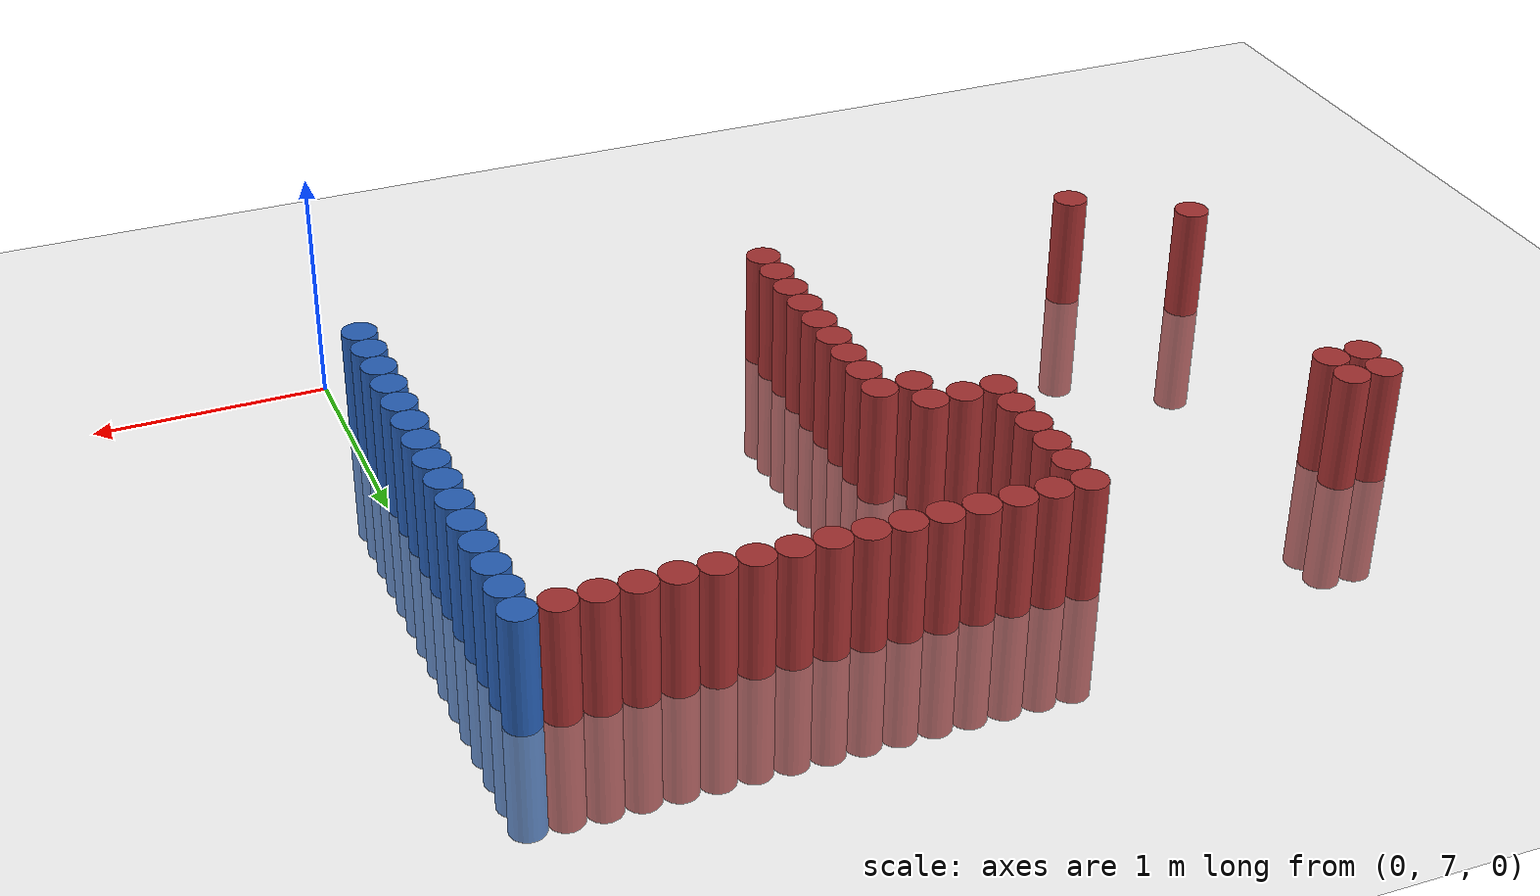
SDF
<sdf version="1.6">
 <world name="default">
  <model name="ground_plane">
   <static>1</static>
   <link name="link">
    <collision name="collision">
     <geometry><plane><normal>0 0 1</normal><size>100 100</size></plane></geometry>
     <surface><friction><ode><mu>100</mu><mu2>50</mu2></ode></friction></surface>
    </collision>
    <visual name="visual">
     <cast_shadows>0</cast_shadows>
     <geometry><plane><normal>0 0 1</normal><size>100 100</size></plane></geometry>
     <material>
      <script><uri>file://media/materials/scripts/gazebo.material</uri><name>Gazebo/Grey</name></script>
     </material>
    </visual>
   </link>
  </model>
  <model name="unit_cylinder_256">
   <static>1</static>
   <pose>-3.825000 7.725000 0.000000 0.000000 0.000000 0.000000</pose>
   <link name="link">
    <inertial>
     <mass>1</mass>
     <inertia><ixx>0.145833</ixx><ixy>0</ixy><ixz>0</ixz><iyy>0.145833</iyy><iyz>0</iyz><izz>0.125</izz></inertia>
    </inertial>
    <collision name="collision">
     <geometry><cylinder><radius>0.075000</radius><length>1</length></cylinder></geometry>
    </collision>
    <visual name="visual">
     <geometry><cylinder><radius>0.075000</radius><length>1</length></cylinder></geometry>
     <material>
      <ambient>0.648000 0.192000 0.192000 1</ambient>
      <diffuse>0.648000 0.192000 0.192000 1</diffuse>
     </material>
     <material>
      <script><name>Gazebo/Grey</name><uri>file://media/materials/scripts/gazebo.material</uri></script>
     </material>
    </visual>
   </link>
  </model>
  <model name="unit_cylinder_257">
   <static>1</static>
   <pose>-3.825000 9.075000 0.000000 0.000000 0.000000 0.000000</pose>
   <link name="link">
    <inertial>
     <mass>1</mass>
     <inertia><ixx>0.145833</ixx><ixy>0</ixy><ixz>0</ixz><iyy>0.145833</iyy><iyz>0</iyz><izz>0.125</izz></inertia>
    </inertial>
    <collision name="collision">
     <geometry><cylinder><radius>0.075000</radius><length>1</length></cylinder></geometry>
    </collision>
    <visual name="visual">
     <geometry><cylinder><radius>0.075000</radius><length>1</length></cylinder></geometry>
     <material>
      <ambient>0.648000 0.192000 0.192000 1</ambient>
      <diffuse>0.648000 0.192000 0.192000 1</diffuse>
     </material>
     <material>
      <script><name>Gazebo/Grey</name><uri>file://media/materials/scripts/gazebo.material</uri></script>
     </material>
    </visual>
   </link>
  </model>
  <model name="unit_cylinder_258">
   <static>1</static>
   <pose>-3.825000 9.225000 0.000000 0.000000 0.000000 0.000000</pose>
   <link name="link">
    <inertial>
     <mass>1</mass>
     <inertia><ixx>0.145833</ixx><ixy>0</ixy><ixz>0</ixz><iyy>0.145833</iyy><iyz>0</iyz><izz>0.125</izz></inertia>
    </inertial>
    <collision name="collision">
     <geometry><cylinder><radius>0.075000</radius><length>1</length></cylinder></geometry>
    </collision>
    <visual name="visual">
     <geometry><cylinder><radius>0.075000</radius><length>1</length></cylinder></geometry>
     <material>
      <ambient>0.648000 0.192000 0.192000 1</ambient>
      <diffuse>0.648000 0.192000 0.192000 1</diffuse>
     </material>
     <material>
      <script><name>Gazebo/Grey</name><uri>file://media/materials/scripts/gazebo.material</uri></script>
     </material>
    </visual>
   </link>
  </model>
  <model name="unit_cylinder_264">
   <static>1</static>
   <pose>-3.675000 9.075000 0.000000 0.000000 0.000000 0.000000</pose>
   <link name="link">
    <inertial>
     <mass>1</mass>
     <inertia><ixx>0.145833</ixx><ixy>0</ixy><ixz>0</ixz><iyy>0.145833</iyy><iyz>0</iyz><izz>0.125</izz></inertia>
    </inertial>
    <collision name="collision">
     <geometry><cylinder><radius>0.075000</radius><length>1</length></cylinder></geometry>
    </collision>
    <visual name="visual">
     <geometry><cylinder><radius>0.075000</radius><length>1</length></cylinder></geometry>
     <material>
      <ambient>0.648000 0.192000 0.192000 1</ambient>
      <diffuse>0.648000 0.192000 0.192000 1</diffuse>
     </material>
     <material>
      <script><name>Gazebo/Grey</name><uri>file://media/materials/scripts/gazebo.material</uri></script>
     </material>
    </visual>
   </link>
  </model>
  <model name="unit_cylinder_265">
   <static>1</static>
   <pose>-3.675000 9.225000 0.000000 0.000000 0.000000 0.000000</pose>
   <link name="link">
    <inertial>
     <mass>1</mass>
     <inertia><ixx>0.145833</ixx><ixy>0</ixy><ixz>0</ixz><iyy>0.145833</iyy><iyz>0</iyz><izz>0.125</izz></inertia>
    </inertial>
    <collision name="collision">
     <geometry><cylinder><radius>0.075000</radius><length>1</length></cylinder></geometry>
    </collision>
    <visual name="visual">
     <geometry><cylinder><radius>0.075000</radius><length>1</length></cylinder></geometry>
     <material>
      <ambient>0.648000 0.192000 0.192000 1</ambient>
      <diffuse>0.648000 0.192000 0.192000 1</diffuse>
     </material>
     <material>
      <script><name>Gazebo/Grey</name><uri>file://media/materials/scripts/gazebo.material</uri></script>
     </material>
    </visual>
   </link>
  </model>
  <model name="unit_cylinder_278">
   <static>1</static>
   <pose>-3.375000 7.425000 0.000000 0.000000 0.000000 0.000000</pose>
   <link name="link">
    <inertial>
     <mass>1</mass>
     <inertia><ixx>0.145833</ixx><ixy>0</ixy><ixz>0</ixz><iyy>0.145833</iyy><iyz>0</iyz><izz>0.125</izz></inertia>
    </inertial>
    <collision name="collision">
     <geometry><cylinder><radius>0.075000</radius><length>1</length></cylinder></geometry>
    </collision>
    <visual name="visual">
     <geometry><cylinder><radius>0.075000</radius><length>1</length></cylinder></geometry>
     <material>
      <ambient>0.648000 0.192000 0.192000 1</ambient>
      <diffuse>0.648000 0.192000 0.192000 1</diffuse>
     </material>
     <material>
      <script><name>Gazebo/Grey</name><uri>file://media/materials/scripts/gazebo.material</uri></script>
     </material>
    </visual>
   </link>
  </model>
  <model name="unit_cylinder_281">
   <static>1</static>
   <pose>-2.325000 8.775000 0.000000 0.000000 0.000000 0.000000</pose>
   <link name="link">
    <inertial>
     <mass>1</mass>
     <inertia><ixx>0.145833</ixx><ixy>0</ixy><ixz>0</ixz><iyy>0.145833</iyy><iyz>0</iyz><izz>0.125</izz></inertia>
    </inertial>
    <collision name="collision">
     <geometry><cylinder><radius>0.075000</radius><length>1</length></cylinder></geometry>
    </collision>
    <visual name="visual">
     <geometry><cylinder><radius>0.075000</radius><length>1</length></cylinder></geometry>
     <material>
      <ambient>0.648000 0.192000 0.192000 1</ambient>
      <diffuse>0.648000 0.192000 0.192000 1</diffuse>
     </material>
     <material>
      <script><name>Gazebo/Grey</name><uri>file://media/materials/scripts/gazebo.material</uri></script>
     </material>
    </visual>
   </link>
  </model>
  <model name="unit_cylinder_282">
   <static>1</static>
   <pose>-2.325000 8.925000 0.000000 0.000000 0.000000 0.000000</pose>
   <link name="link">
    <inertial>
     <mass>1</mass>
     <inertia><ixx>0.145833</ixx><ixy>0</ixy><ixz>0</ixz><iyy>0.145833</iyy><iyz>0</iyz><izz>0.125</izz></inertia>
    </inertial>
    <collision name="collision">
     <geometry><cylinder><radius>0.075000</radius><length>1</length></cylinder></geometry>
    </collision>
    <visual name="visual">
     <geometry><cylinder><radius>0.075000</radius><length>1</length></cylinder></geometry>
     <material>
      <ambient>0.648000 0.192000 0.192000 1</ambient>
      <diffuse>0.648000 0.192000 0.192000 1</diffuse>
     </material>
     <material>
      <script><name>Gazebo/Grey</name><uri>file://media/materials/scripts/gazebo.material</uri></script>
     </material>
    </visual>
   </link>
  </model>
  <model name="unit_cylinder_283">
   <static>1</static>
   <pose>-2.325000 9.075000 0.000000 0.000000 0.000000 0.000000</pose>
   <link name="link">
    <inertial>
     <mass>1</mass>
     <inertia><ixx>0.145833</ixx><ixy>0</ixy><ixz>0</ixz><iyy>0.145833</iyy><iyz>0</iyz><izz>0.125</izz></inertia>
    </inertial>
    <collision name="collision">
     <geometry><cylinder><radius>0.075000</radius><length>1</length></cylinder></geometry>
    </collision>
    <visual name="visual">
     <geometry><cylinder><radius>0.075000</radius><length>1</length></cylinder></geometry>
     <material>
      <ambient>0.648000 0.192000 0.192000 1</ambient>
      <diffuse>0.648000 0.192000 0.192000 1</diffuse>
     </material>
     <material>
      <script><name>Gazebo/Grey</name><uri>file://media/materials/scripts/gazebo.material</uri></script>
     </material>
    </visual>
   </link>
  </model>
  <model name="unit_cylinder_284">
   <static>1</static>
   <pose>-2.325000 9.225000 0.000000 0.000000 0.000000 0.000000</pose>
   <link name="link">
    <inertial>
     <mass>1</mass>
     <inertia><ixx>0.145833</ixx><ixy>0</ixy><ixz>0</ixz><iyy>0.145833</iyy><iyz>0</iyz><izz>0.125</izz></inertia>
    </inertial>
    <collision name="collision">
     <geometry><cylinder><radius>0.075000</radius><length>1</length></cylinder></geometry>
    </collision>
    <visual name="visual">
     <geometry><cylinder><radius>0.075000</radius><length>1</length></cylinder></geometry>
     <material>
      <ambient>0.648000 0.192000 0.192000 1</ambient>
      <diffuse>0.648000 0.192000 0.192000 1</diffuse>
     </material>
     <material>
      <script><name>Gazebo/Grey</name><uri>file://media/materials/scripts/gazebo.material</uri></script>
     </material>
    </visual>
   </link>
  </model>
  <model name="unit_cylinder_285">
   <static>1</static>
   <pose>-2.325000 9.375000 0.000000 0.000000 0.000000 0.000000</pose>
   <link name="link">
    <inertial>
     <mass>1</mass>
     <inertia><ixx>0.145833</ixx><ixy>0</ixy><ixz>0</ixz><iyy>0.145833</iyy><iyz>0</iyz><izz>0.125</izz></inertia>
    </inertial>
    <collision name="collision">
     <geometry><cylinder><radius>0.075000</radius><length>1</length></cylinder></geometry>
    </collision>
    <visual name="visual">
     <geometry><cylinder><radius>0.075000</radius><length>1</length></cylinder></geometry>
     <material>
      <ambient>0.648000 0.192000 0.192000 1</ambient>
      <diffuse>0.648000 0.192000 0.192000 1</diffuse>
     </material>
     <material>
      <script><name>Gazebo/Grey</name><uri>file://media/materials/scripts/gazebo.material</uri></script>
     </material>
    </visual>
   </link>
  </model>
  <model name="unit_cylinder_286">
   <static>1</static>
   <pose>-2.325000 9.525000 0.000000 0.000000 0.000000 0.000000</pose>
   <link name="link">
    <inertial>
     <mass>1</mass>
     <inertia><ixx>0.145833</ixx><ixy>0</ixy><ixz>0</ixz><iyy>0.145833</iyy><iyz>0</iyz><izz>0.125</izz></inertia>
    </inertial>
    <collision name="collision">
     <geometry><cylinder><radius>0.075000</radius><length>1</length></cylinder></geometry>
    </collision>
    <visual name="visual">
     <geometry><cylinder><radius>0.075000</radius><length>1</length></cylinder></geometry>
     <material>
      <ambient>0.648000 0.192000 0.192000 1</ambient>
      <diffuse>0.648000 0.192000 0.192000 1</diffuse>
     </material>
     <material>
      <script><name>Gazebo/Grey</name><uri>file://media/materials/scripts/gazebo.material</uri></script>
     </material>
    </visual>
   </link>
  </model>
  <model name="unit_cylinder_287">
   <static>1</static>
   <pose>-2.175000 8.775000 0.000000 0.000000 0.000000 0.000000</pose>
   <link name="link">
    <inertial>
     <mass>1</mass>
     <inertia><ixx>0.145833</ixx><ixy>0</ixy><ixz>0</ixz><iyy>0.145833</iyy><iyz>0</iyz><izz>0.125</izz></inertia>
    </inertial>
    <collision name="collision">
     <geometry><cylinder><radius>0.075000</radius><length>1</length></cylinder></geometry>
    </collision>
    <visual name="visual">
     <geometry><cylinder><radius>0.075000</radius><length>1</length></cylinder></geometry>
     <material>
      <ambient>0.648000 0.192000 0.192000 1</ambient>
      <diffuse>0.648000 0.192000 0.192000 1</diffuse>
     </material>
     <material>
      <script><name>Gazebo/Grey</name><uri>file://media/materials/scripts/gazebo.material</uri></script>
     </material>
    </visual>
   </link>
  </model>
  <model name="unit_cylinder_288">
   <static>1</static>
   <pose>-2.175000 9.525000 0.000000 0.000000 0.000000 0.000000</pose>
   <link name="link">
    <inertial>
     <mass>1</mass>
     <inertia><ixx>0.145833</ixx><ixy>0</ixy><ixz>0</ixz><iyy>0.145833</iyy><iyz>0</iyz><izz>0.125</izz></inertia>
    </inertial>
    <collision name="collision">
     <geometry><cylinder><radius>0.075000</radius><length>1</length></cylinder></geometry>
    </collision>
    <visual name="visual">
     <geometry><cylinder><radius>0.075000</radius><length>1</length></cylinder></geometry>
     <material>
      <ambient>0.648000 0.192000 0.192000 1</ambient>
      <diffuse>0.648000 0.192000 0.192000 1</diffuse>
     </material>
     <material>
      <script><name>Gazebo/Grey</name><uri>file://media/materials/scripts/gazebo.material</uri></script>
     </material>
    </visual>
   </link>
  </model>
  <model name="unit_cylinder_294">
   <static>1</static>
   <pose>-2.025000 8.625000 0.000000 0.000000 0.000000 0.000000</pose>
   <link name="link">
    <inertial>
     <mass>1</mass>
     <inertia><ixx>0.145833</ixx><ixy>0</ixy><ixz>0</ixz><iyy>0.145833</iyy><iyz>0</iyz><izz>0.125</izz></inertia>
    </inertial>
    <collision name="collision">
     <geometry><cylinder><radius>0.075000</radius><length>1</length></cylinder></geometry>
    </collision>
    <visual name="visual">
     <geometry><cylinder><radius>0.075000</radius><length>1</length></cylinder></geometry>
     <material>
      <ambient>0.648000 0.192000 0.192000 1</ambient>
      <diffuse>0.648000 0.192000 0.192000 1</diffuse>
     </material>
     <material>
      <script><name>Gazebo/Grey</name><uri>file://media/materials/scripts/gazebo.material</uri></script>
     </material>
    </visual>
   </link>
  </model>
  <model name="unit_cylinder_295">
   <static>1</static>
   <pose>-2.025000 8.775000 0.000000 0.000000 0.000000 0.000000</pose>
   <link name="link">
    <inertial>
     <mass>1</mass>
     <inertia><ixx>0.145833</ixx><ixy>0</ixy><ixz>0</ixz><iyy>0.145833</iyy><iyz>0</iyz><izz>0.125</izz></inertia>
    </inertial>
    <collision name="collision">
     <geometry><cylinder><radius>0.075000</radius><length>1</length></cylinder></geometry>
    </collision>
    <visual name="visual">
     <geometry><cylinder><radius>0.075000</radius><length>1</length></cylinder></geometry>
     <material>
      <ambient>0.648000 0.192000 0.192000 1</ambient>
      <diffuse>0.648000 0.192000 0.192000 1</diffuse>
     </material>
     <material>
      <script><name>Gazebo/Grey</name><uri>file://media/materials/scripts/gazebo.material</uri></script>
     </material>
    </visual>
   </link>
  </model>
  <model name="unit_cylinder_296">
   <static>1</static>
   <pose>-2.025000 9.525000 0.000000 0.000000 0.000000 0.000000</pose>
   <link name="link">
    <inertial>
     <mass>1</mass>
     <inertia><ixx>0.145833</ixx><ixy>0</ixy><ixz>0</ixz><iyy>0.145833</iyy><iyz>0</iyz><izz>0.125</izz></inertia>
    </inertial>
    <collision name="collision">
     <geometry><cylinder><radius>0.075000</radius><length>1</length></cylinder></geometry>
    </collision>
    <visual name="visual">
     <geometry><cylinder><radius>0.075000</radius><length>1</length></cylinder></geometry>
     <material>
      <ambient>0.648000 0.192000 0.192000 1</ambient>
      <diffuse>0.648000 0.192000 0.192000 1</diffuse>
     </material>
     <material>
      <script><name>Gazebo/Grey</name><uri>file://media/materials/scripts/gazebo.material</uri></script>
     </material>
    </visual>
   </link>
  </model>
  <model name="unit_cylinder_309">
   <static>1</static>
   <pose>-1.875000 7.425000 0.000000 0.000000 0.000000 0.000000</pose>
   <link name="link">
    <inertial>
     <mass>1</mass>
     <inertia><ixx>0.145833</ixx><ixy>0</ixy><ixz>0</ixz><iyy>0.145833</iyy><iyz>0</iyz><izz>0.125</izz></inertia>
    </inertial>
    <collision name="collision">
     <geometry><cylinder><radius>0.075000</radius><length>1</length></cylinder></geometry>
    </collision>
    <visual name="visual">
     <geometry><cylinder><radius>0.075000</radius><length>1</length></cylinder></geometry>
     <material>
      <ambient>0.648000 0.192000 0.192000 1</ambient>
      <diffuse>0.648000 0.192000 0.192000 1</diffuse>
     </material>
     <material>
      <script><name>Gazebo/Grey</name><uri>file://media/materials/scripts/gazebo.material</uri></script>
     </material>
    </visual>
   </link>
  </model>
  <model name="unit_cylinder_310">
   <static>1</static>
   <pose>-1.875000 7.575000 0.000000 0.000000 0.000000 0.000000</pose>
   <link name="link">
    <inertial>
     <mass>1</mass>
     <inertia><ixx>0.145833</ixx><ixy>0</ixy><ixz>0</ixz><iyy>0.145833</iyy><iyz>0</iyz><izz>0.125</izz></inertia>
    </inertial>
    <collision name="collision">
     <geometry><cylinder><radius>0.075000</radius><length>1</length></cylinder></geometry>
    </collision>
    <visual name="visual">
     <geometry><cylinder><radius>0.075000</radius><length>1</length></cylinder></geometry>
     <material>
      <ambient>0.648000 0.192000 0.192000 1</ambient>
      <diffuse>0.648000 0.192000 0.192000 1</diffuse>
     </material>
     <material>
      <script><name>Gazebo/Grey</name><uri>file://media/materials/scripts/gazebo.material</uri></script>
     </material>
    </visual>
   </link>
  </model>
  <model name="unit_cylinder_311">
   <static>1</static>
   <pose>-1.875000 7.725000 0.000000 0.000000 0.000000 0.000000</pose>
   <link name="link">
    <inertial>
     <mass>1</mass>
     <inertia><ixx>0.145833</ixx><ixy>0</ixy><ixz>0</ixz><iyy>0.145833</iyy><iyz>0</iyz><izz>0.125</izz></inertia>
    </inertial>
    <collision name="collision">
     <geometry><cylinder><radius>0.075000</radius><length>1</length></cylinder></geometry>
    </collision>
    <visual name="visual">
     <geometry><cylinder><radius>0.075000</radius><length>1</length></cylinder></geometry>
     <material>
      <ambient>0.648000 0.192000 0.192000 1</ambient>
      <diffuse>0.648000 0.192000 0.192000 1</diffuse>
     </material>
     <material>
      <script><name>Gazebo/Grey</name><uri>file://media/materials/scripts/gazebo.material</uri></script>
     </material>
    </visual>
   </link>
  </model>
  <model name="unit_cylinder_312">
   <static>1</static>
   <pose>-1.875000 7.875000 0.000000 0.000000 0.000000 0.000000</pose>
   <link name="link">
    <inertial>
     <mass>1</mass>
     <inertia><ixx>0.145833</ixx><ixy>0</ixy><ixz>0</ixz><iyy>0.145833</iyy><iyz>0</iyz><izz>0.125</izz></inertia>
    </inertial>
    <collision name="collision">
     <geometry><cylinder><radius>0.075000</radius><length>1</length></cylinder></geometry>
    </collision>
    <visual name="visual">
     <geometry><cylinder><radius>0.075000</radius><length>1</length></cylinder></geometry>
     <material>
      <ambient>0.648000 0.192000 0.192000 1</ambient>
      <diffuse>0.648000 0.192000 0.192000 1</diffuse>
     </material>
     <material>
      <script><name>Gazebo/Grey</name><uri>file://media/materials/scripts/gazebo.material</uri></script>
     </material>
    </visual>
   </link>
  </model>
  <model name="unit_cylinder_313">
   <static>1</static>
   <pose>-1.875000 8.025000 0.000000 0.000000 0.000000 0.000000</pose>
   <link name="link">
    <inertial>
     <mass>1</mass>
     <inertia><ixx>0.145833</ixx><ixy>0</ixy><ixz>0</ixz><iyy>0.145833</iyy><iyz>0</iyz><izz>0.125</izz></inertia>
    </inertial>
    <collision name="collision">
     <geometry><cylinder><radius>0.075000</radius><length>1</length></cylinder></geometry>
    </collision>
    <visual name="visual">
     <geometry><cylinder><radius>0.075000</radius><length>1</length></cylinder></geometry>
     <material>
      <ambient>0.648000 0.192000 0.192000 1</ambient>
      <diffuse>0.648000 0.192000 0.192000 1</diffuse>
     </material>
     <material>
      <script><name>Gazebo/Grey</name><uri>file://media/materials/scripts/gazebo.material</uri></script>
     </material>
    </visual>
   </link>
  </model>
  <model name="unit_cylinder_314">
   <static>1</static>
   <pose>-1.875000 8.175000 0.000000 0.000000 0.000000 0.000000</pose>
   <link name="link">
    <inertial>
     <mass>1</mass>
     <inertia><ixx>0.145833</ixx><ixy>0</ixy><ixz>0</ixz><iyy>0.145833</iyy><iyz>0</iyz><izz>0.125</izz></inertia>
    </inertial>
    <collision name="collision">
     <geometry><cylinder><radius>0.075000</radius><length>1</length></cylinder></geometry>
    </collision>
    <visual name="visual">
     <geometry><cylinder><radius>0.075000</radius><length>1</length></cylinder></geometry>
     <material>
      <ambient>0.648000 0.192000 0.192000 1</ambient>
      <diffuse>0.648000 0.192000 0.192000 1</diffuse>
     </material>
     <material>
      <script><name>Gazebo/Grey</name><uri>file://media/materials/scripts/gazebo.material</uri></script>
     </material>
    </visual>
   </link>
  </model>
  <model name="unit_cylinder_315">
   <static>1</static>
   <pose>-1.875000 8.325000 0.000000 0.000000 0.000000 0.000000</pose>
   <link name="link">
    <inertial>
     <mass>1</mass>
     <inertia><ixx>0.145833</ixx><ixy>0</ixy><ixz>0</ixz><iyy>0.145833</iyy><iyz>0</iyz><izz>0.125</izz></inertia>
    </inertial>
    <collision name="collision">
     <geometry><cylinder><radius>0.075000</radius><length>1</length></cylinder></geometry>
    </collision>
    <visual name="visual">
     <geometry><cylinder><radius>0.075000</radius><length>1</length></cylinder></geometry>
     <material>
      <ambient>0.648000 0.192000 0.192000 1</ambient>
      <diffuse>0.648000 0.192000 0.192000 1</diffuse>
     </material>
     <material>
      <script><name>Gazebo/Grey</name><uri>file://media/materials/scripts/gazebo.material</uri></script>
     </material>
    </visual>
   </link>
  </model>
  <model name="unit_cylinder_316">
   <static>1</static>
   <pose>-1.875000 8.475000 0.000000 0.000000 0.000000 0.000000</pose>
   <link name="link">
    <inertial>
     <mass>1</mass>
     <inertia><ixx>0.145833</ixx><ixy>0</ixy><ixz>0</ixz><iyy>0.145833</iyy><iyz>0</iyz><izz>0.125</izz></inertia>
    </inertial>
    <collision name="collision">
     <geometry><cylinder><radius>0.075000</radius><length>1</length></cylinder></geometry>
    </collision>
    <visual name="visual">
     <geometry><cylinder><radius>0.075000</radius><length>1</length></cylinder></geometry>
     <material>
      <ambient>0.648000 0.192000 0.192000 1</ambient>
      <diffuse>0.648000 0.192000 0.192000 1</diffuse>
     </material>
     <material>
      <script><name>Gazebo/Grey</name><uri>file://media/materials/scripts/gazebo.material</uri></script>
     </material>
    </visual>
   </link>
  </model>
  <model name="unit_cylinder_317">
   <static>1</static>
   <pose>-1.875000 8.625000 0.000000 0.000000 0.000000 0.000000</pose>
   <link name="link">
    <inertial>
     <mass>1</mass>
     <inertia><ixx>0.145833</ixx><ixy>0</ixy><ixz>0</ixz><iyy>0.145833</iyy><iyz>0</iyz><izz>0.125</izz></inertia>
    </inertial>
    <collision name="collision">
     <geometry><cylinder><radius>0.075000</radius><length>1</length></cylinder></geometry>
    </collision>
    <visual name="visual">
     <geometry><cylinder><radius>0.075000</radius><length>1</length></cylinder></geometry>
     <material>
      <ambient>0.648000 0.192000 0.192000 1</ambient>
      <diffuse>0.648000 0.192000 0.192000 1</diffuse>
     </material>
     <material>
      <script><name>Gazebo/Grey</name><uri>file://media/materials/scripts/gazebo.material</uri></script>
     </material>
    </visual>
   </link>
  </model>
  <model name="unit_cylinder_318">
   <static>1</static>
   <pose>-1.875000 9.525000 0.000000 0.000000 0.000000 0.000000</pose>
   <link name="link">
    <inertial>
     <mass>1</mass>
     <inertia><ixx>0.145833</ixx><ixy>0</ixy><ixz>0</ixz><iyy>0.145833</iyy><iyz>0</iyz><izz>0.125</izz></inertia>
    </inertial>
    <collision name="collision">
     <geometry><cylinder><radius>0.075000</radius><length>1</length></cylinder></geometry>
    </collision>
    <visual name="visual">
     <geometry><cylinder><radius>0.075000</radius><length>1</length></cylinder></geometry>
     <material>
      <ambient>0.648000 0.192000 0.192000 1</ambient>
      <diffuse>0.648000 0.192000 0.192000 1</diffuse>
     </material>
     <material>
      <script><name>Gazebo/Grey</name><uri>file://media/materials/scripts/gazebo.material</uri></script>
     </material>
    </visual>
   </link>
  </model>
  <model name="unit_cylinder_320">
   <static>1</static>
   <pose>-1.725000 9.525000 0.000000 0.000000 0.000000 0.000000</pose>
   <link name="link">
    <inertial>
     <mass>1</mass>
     <inertia><ixx>0.145833</ixx><ixy>0</ixy><ixz>0</ixz><iyy>0.145833</iyy><iyz>0</iyz><izz>0.125</izz></inertia>
    </inertial>
    <collision name="collision">
     <geometry><cylinder><radius>0.075000</radius><length>1</length></cylinder></geometry>
    </collision>
    <visual name="visual">
     <geometry><cylinder><radius>0.075000</radius><length>1</length></cylinder></geometry>
     <material>
      <ambient>0.648000 0.192000 0.192000 1</ambient>
      <diffuse>0.648000 0.192000 0.192000 1</diffuse>
     </material>
     <material>
      <script><name>Gazebo/Grey</name><uri>file://media/materials/scripts/gazebo.material</uri></script>
     </material>
    </visual>
   </link>
  </model>
  <model name="unit_cylinder_322">
   <static>1</static>
   <pose>-1.575000 9.525000 0.000000 0.000000 0.000000 0.000000</pose>
   <link name="link">
    <inertial>
     <mass>1</mass>
     <inertia><ixx>0.145833</ixx><ixy>0</ixy><ixz>0</ixz><iyy>0.145833</iyy><iyz>0</iyz><izz>0.125</izz></inertia>
    </inertial>
    <collision name="collision">
     <geometry><cylinder><radius>0.075000</radius><length>1</length></cylinder></geometry>
    </collision>
    <visual name="visual">
     <geometry><cylinder><radius>0.075000</radius><length>1</length></cylinder></geometry>
     <material>
      <ambient>0.648000 0.192000 0.192000 1</ambient>
      <diffuse>0.648000 0.192000 0.192000 1</diffuse>
     </material>
     <material>
      <script><name>Gazebo/Grey</name><uri>file://media/materials/scripts/gazebo.material</uri></script>
     </material>
    </visual>
   </link>
  </model>
  <model name="unit_cylinder_324">
   <static>1</static>
   <pose>-1.425000 9.525000 0.000000 0.000000 0.000000 0.000000</pose>
   <link name="link">
    <inertial>
     <mass>1</mass>
     <inertia><ixx>0.145833</ixx><ixy>0</ixy><ixz>0</ixz><iyy>0.145833</iyy><iyz>0</iyz><izz>0.125</izz></inertia>
    </inertial>
    <collision name="collision">
     <geometry><cylinder><radius>0.075000</radius><length>1</length></cylinder></geometry>
    </collision>
    <visual name="visual">
     <geometry><cylinder><radius>0.075000</radius><length>1</length></cylinder></geometry>
     <material>
      <ambient>0.648000 0.192000 0.192000 1</ambient>
      <diffuse>0.648000 0.192000 0.192000 1</diffuse>
     </material>
     <material>
      <script><name>Gazebo/Grey</name><uri>file://media/materials/scripts/gazebo.material</uri></script>
     </material>
    </visual>
   </link>
  </model>
  <model name="unit_cylinder_326">
   <static>1</static>
   <pose>-1.275000 9.525000 0.000000 0.000000 0.000000 0.000000</pose>
   <link name="link">
    <inertial>
     <mass>1</mass>
     <inertia><ixx>0.145833</ixx><ixy>0</ixy><ixz>0</ixz><iyy>0.145833</iyy><iyz>0</iyz><izz>0.125</izz></inertia>
    </inertial>
    <collision name="collision">
     <geometry><cylinder><radius>0.075000</radius><length>1</length></cylinder></geometry>
    </collision>
    <visual name="visual">
     <geometry><cylinder><radius>0.075000</radius><length>1</length></cylinder></geometry>
     <material>
      <ambient>0.648000 0.192000 0.192000 1</ambient>
      <diffuse>0.648000 0.192000 0.192000 1</diffuse>
     </material>
     <material>
      <script><name>Gazebo/Grey</name><uri>file://media/materials/scripts/gazebo.material</uri></script>
     </material>
    </visual>
   </link>
  </model>
  <model name="unit_cylinder_328">
   <static>1</static>
   <pose>-1.125000 9.525000 0.000000 0.000000 0.000000 0.000000</pose>
   <link name="link">
    <inertial>
     <mass>1</mass>
     <inertia><ixx>0.145833</ixx><ixy>0</ixy><ixz>0</ixz><iyy>0.145833</iyy><iyz>0</iyz><izz>0.125</izz></inertia>
    </inertial>
    <collision name="collision">
     <geometry><cylinder><radius>0.075000</radius><length>1</length></cylinder></geometry>
    </collision>
    <visual name="visual">
     <geometry><cylinder><radius>0.075000</radius><length>1</length></cylinder></geometry>
     <material>
      <ambient>0.648000 0.192000 0.192000 1</ambient>
      <diffuse>0.648000 0.192000 0.192000 1</diffuse>
     </material>
     <material>
      <script><name>Gazebo/Grey</name><uri>file://media/materials/scripts/gazebo.material</uri></script>
     </material>
    </visual>
   </link>
  </model>
  <model name="unit_cylinder_330">
   <static>1</static>
   <pose>-0.975000 9.525000 0.000000 0.000000 0.000000 0.000000</pose>
   <link name="link">
    <inertial>
     <mass>1</mass>
     <inertia><ixx>0.145833</ixx><ixy>0</ixy><ixz>0</ixz><iyy>0.145833</iyy><iyz>0</iyz><izz>0.125</izz></inertia>
    </inertial>
    <collision name="collision">
     <geometry><cylinder><radius>0.075000</radius><length>1</length></cylinder></geometry>
    </collision>
    <visual name="visual">
     <geometry><cylinder><radius>0.075000</radius><length>1</length></cylinder></geometry>
     <material>
      <ambient>0.648000 0.192000 0.192000 1</ambient>
      <diffuse>0.648000 0.192000 0.192000 1</diffuse>
     </material>
     <material>
      <script><name>Gazebo/Grey</name><uri>file://media/materials/scripts/gazebo.material</uri></script>
     </material>
    </visual>
   </link>
  </model>
  <model name="unit_cylinder_332">
   <static>1</static>
   <pose>-0.825000 9.525000 0.000000 0.000000 0.000000 0.000000</pose>
   <link name="link">
    <inertial>
     <mass>1</mass>
     <inertia><ixx>0.145833</ixx><ixy>0</ixy><ixz>0</ixz><iyy>0.145833</iyy><iyz>0</iyz><izz>0.125</izz></inertia>
    </inertial>
    <collision name="collision">
     <geometry><cylinder><radius>0.075000</radius><length>1</length></cylinder></geometry>
    </collision>
    <visual name="visual">
     <geometry><cylinder><radius>0.075000</radius><length>1</length></cylinder></geometry>
     <material>
      <ambient>0.648000 0.192000 0.192000 1</ambient>
      <diffuse>0.648000 0.192000 0.192000 1</diffuse>
     </material>
     <material>
      <script><name>Gazebo/Grey</name><uri>file://media/materials/scripts/gazebo.material</uri></script>
     </material>
    </visual>
   </link>
  </model>
  <model name="unit_cylinder_334">
   <static>1</static>
   <pose>-0.675000 9.525000 0.000000 0.000000 0.000000 0.000000</pose>
   <link name="link">
    <inertial>
     <mass>1</mass>
     <inertia><ixx>0.145833</ixx><ixy>0</ixy><ixz>0</ixz><iyy>0.145833</iyy><iyz>0</iyz><izz>0.125</izz></inertia>
    </inertial>
    <collision name="collision">
     <geometry><cylinder><radius>0.075000</radius><length>1</length></cylinder></geometry>
    </collision>
    <visual name="visual">
     <geometry><cylinder><radius>0.075000</radius><length>1</length></cylinder></geometry>
     <material>
      <ambient>0.648000 0.192000 0.192000 1</ambient>
      <diffuse>0.648000 0.192000 0.192000 1</diffuse>
     </material>
     <material>
      <script><name>Gazebo/Grey</name><uri>file://media/materials/scripts/gazebo.material</uri></script>
     </material>
    </visual>
   </link>
  </model>
  <model name="unit_cylinder_336">
   <static>1</static>
   <pose>-0.525000 9.525000 0.000000 0.000000 0.000000 0.000000</pose>
   <link name="link">
    <inertial>
     <mass>1</mass>
     <inertia><ixx>0.145833</ixx><ixy>0</ixy><ixz>0</ixz><iyy>0.145833</iyy><iyz>0</iyz><izz>0.125</izz></inertia>
    </inertial>
    <collision name="collision">
     <geometry><cylinder><radius>0.075000</radius><length>1</length></cylinder></geometry>
    </collision>
    <visual name="visual">
     <geometry><cylinder><radius>0.075000</radius><length>1</length></cylinder></geometry>
     <material>
      <ambient>0.648000 0.192000 0.192000 1</ambient>
      <diffuse>0.648000 0.192000 0.192000 1</diffuse>
     </material>
     <material>
      <script><name>Gazebo/Grey</name><uri>file://media/materials/scripts/gazebo.material</uri></script>
     </material>
    </visual>
   </link>
  </model>
  <model name="unit_cylinder_338">
   <static>1</static>
   <pose>-0.375000 9.525000 0.000000 0.000000 0.000000 0.000000</pose>
   <link name="link">
    <inertial>
     <mass>1</mass>
     <inertia><ixx>0.145833</ixx><ixy>0</ixy><ixz>0</ixz><iyy>0.145833</iyy><iyz>0</iyz><izz>0.125</izz></inertia>
    </inertial>
    <collision name="collision">
     <geometry><cylinder><radius>0.075000</radius><length>1</length></cylinder></geometry>
    </collision>
    <visual name="visual">
     <geometry><cylinder><radius>0.075000</radius><length>1</length></cylinder></geometry>
     <material>
      <ambient>0.648000 0.192000 0.192000 1</ambient>
      <diffuse>0.648000 0.192000 0.192000 1</diffuse>
     </material>
     <material>
      <script><name>Gazebo/Grey</name><uri>file://media/materials/scripts/gazebo.material</uri></script>
     </material>
    </visual>
   </link>
  </model>
  <model name="unit_cylinder_340">
   <static>1</static>
   <pose>-0.225000 9.525000 0.000000 0.000000 0.000000 0.000000</pose>
   <link name="link">
    <inertial>
     <mass>1</mass>
     <inertia><ixx>0.145833</ixx><ixy>0</ixy><ixz>0</ixz><iyy>0.145833</iyy><iyz>0</iyz><izz>0.125</izz></inertia>
    </inertial>
    <collision name="collision">
     <geometry><cylinder><radius>0.075000</radius><length>1</length></cylinder></geometry>
    </collision>
    <visual name="visual">
     <geometry><cylinder><radius>0.075000</radius><length>1</length></cylinder></geometry>
     <material>
      <ambient>0.648000 0.192000 0.192000 1</ambient>
      <diffuse>0.648000 0.192000 0.192000 1</diffuse>
     </material>
     <material>
      <script><name>Gazebo/Grey</name><uri>file://media/materials/scripts/gazebo.material</uri></script>
     </material>
    </visual>
   </link>
  </model>
  <model name="unit_cylinder_356">
   <static>1</static>
   <pose>-0.075000 7.425000 0.000000 0.000000 0.000000 0.000000</pose>
   <link name="link">
    <inertial>
     <mass>1</mass>
     <inertia><ixx>0.145833</ixx><ixy>0</ixy><ixz>0</ixz><iyy>0.145833</iyy><iyz>0</iyz><izz>0.125</izz></inertia>
    </inertial>
    <collision name="collision">
     <geometry><cylinder><radius>0.075000</radius><length>1</length></cylinder></geometry>
    </collision>
    <visual name="visual">
     <geometry><cylinder><radius>0.075000</radius><length>1</length></cylinder></geometry>
     <material>
      <ambient>0.152000 0.379000 0.720000 1</ambient>
      <diffuse>0.152000 0.379000 0.720000 1</diffuse>
     </material>
     <material>
      <script><name>Gazebo/Grey</name><uri>file://media/materials/scripts/gazebo.material</uri></script>
     </material>
    </visual>
   </link>
  </model>
  <model name="unit_cylinder_357">
   <static>1</static>
   <pose>-0.075000 7.575000 0.000000 0.000000 0.000000 0.000000</pose>
   <link name="link">
    <inertial>
     <mass>1</mass>
     <inertia><ixx>0.145833</ixx><ixy>0</ixy><ixz>0</ixz><iyy>0.145833</iyy><iyz>0</iyz><izz>0.125</izz></inertia>
    </inertial>
    <collision name="collision">
     <geometry><cylinder><radius>0.075000</radius><length>1</length></cylinder></geometry>
    </collision>
    <visual name="visual">
     <geometry><cylinder><radius>0.075000</radius><length>1</length></cylinder></geometry>
     <material>
      <ambient>0.152000 0.379000 0.720000 1</ambient>
      <diffuse>0.152000 0.379000 0.720000 1</diffuse>
     </material>
     <material>
      <script><name>Gazebo/Grey</name><uri>file://media/materials/scripts/gazebo.material</uri></script>
     </material>
    </visual>
   </link>
  </model>
  <model name="unit_cylinder_358">
   <static>1</static>
   <pose>-0.075000 7.725000 0.000000 0.000000 0.000000 0.000000</pose>
   <link name="link">
    <inertial>
     <mass>1</mass>
     <inertia><ixx>0.145833</ixx><ixy>0</ixy><ixz>0</ixz><iyy>0.145833</iyy><iyz>0</iyz><izz>0.125</izz></inertia>
    </inertial>
    <collision name="collision">
     <geometry><cylinder><radius>0.075000</radius><length>1</length></cylinder></geometry>
    </collision>
    <visual name="visual">
     <geometry><cylinder><radius>0.075000</radius><length>1</length></cylinder></geometry>
     <material>
      <ambient>0.152000 0.379000 0.720000 1</ambient>
      <diffuse>0.152000 0.379000 0.720000 1</diffuse>
     </material>
     <material>
      <script><name>Gazebo/Grey</name><uri>file://media/materials/scripts/gazebo.material</uri></script>
     </material>
    </visual>
   </link>
  </model>
  <model name="unit_cylinder_359">
   <static>1</static>
   <pose>-0.075000 7.875000 0.000000 0.000000 0.000000 0.000000</pose>
   <link name="link">
    <inertial>
     <mass>1</mass>
     <inertia><ixx>0.145833</ixx><ixy>0</ixy><ixz>0</ixz><iyy>0.145833</iyy><iyz>0</iyz><izz>0.125</izz></inertia>
    </inertial>
    <collision name="collision">
     <geometry><cylinder><radius>0.075000</radius><length>1</length></cylinder></geometry>
    </collision>
    <visual name="visual">
     <geometry><cylinder><radius>0.075000</radius><length>1</length></cylinder></geometry>
     <material>
      <ambient>0.152000 0.379000 0.720000 1</ambient>
      <diffuse>0.152000 0.379000 0.720000 1</diffuse>
     </material>
     <material>
      <script><name>Gazebo/Grey</name><uri>file://media/materials/scripts/gazebo.material</uri></script>
     </material>
    </visual>
   </link>
  </model>
  <model name="unit_cylinder_360">
   <static>1</static>
   <pose>-0.075000 8.025000 0.000000 0.000000 0.000000 0.000000</pose>
   <link name="link">
    <inertial>
     <mass>1</mass>
     <inertia><ixx>0.145833</ixx><ixy>0</ixy><ixz>0</ixz><iyy>0.145833</iyy><iyz>0</iyz><izz>0.125</izz></inertia>
    </inertial>
    <collision name="collision">
     <geometry><cylinder><radius>0.075000</radius><length>1</length></cylinder></geometry>
    </collision>
    <visual name="visual">
     <geometry><cylinder><radius>0.075000</radius><length>1</length></cylinder></geometry>
     <material>
      <ambient>0.152000 0.379000 0.720000 1</ambient>
      <diffuse>0.152000 0.379000 0.720000 1</diffuse>
     </material>
     <material>
      <script><name>Gazebo/Grey</name><uri>file://media/materials/scripts/gazebo.material</uri></script>
     </material>
    </visual>
   </link>
  </model>
  <model name="unit_cylinder_361">
   <static>1</static>
   <pose>-0.075000 8.175000 0.000000 0.000000 0.000000 0.000000</pose>
   <link name="link">
    <inertial>
     <mass>1</mass>
     <inertia><ixx>0.145833</ixx><ixy>0</ixy><ixz>0</ixz><iyy>0.145833</iyy><iyz>0</iyz><izz>0.125</izz></inertia>
    </inertial>
    <collision name="collision">
     <geometry><cylinder><radius>0.075000</radius><length>1</length></cylinder></geometry>
    </collision>
    <visual name="visual">
     <geometry><cylinder><radius>0.075000</radius><length>1</length></cylinder></geometry>
     <material>
      <ambient>0.152000 0.379000 0.720000 1</ambient>
      <diffuse>0.152000 0.379000 0.720000 1</diffuse>
     </material>
     <material>
      <script><name>Gazebo/Grey</name><uri>file://media/materials/scripts/gazebo.material</uri></script>
     </material>
    </visual>
   </link>
  </model>
  <model name="unit_cylinder_362">
   <static>1</static>
   <pose>-0.075000 8.325000 0.000000 0.000000 0.000000 0.000000</pose>
   <link name="link">
    <inertial>
     <mass>1</mass>
     <inertia><ixx>0.145833</ixx><ixy>0</ixy><ixz>0</ixz><iyy>0.145833</iyy><iyz>0</iyz><izz>0.125</izz></inertia>
    </inertial>
    <collision name="collision">
     <geometry><cylinder><radius>0.075000</radius><length>1</length></cylinder></geometry>
    </collision>
    <visual name="visual">
     <geometry><cylinder><radius>0.075000</radius><length>1</length></cylinder></geometry>
     <material>
      <ambient>0.152000 0.379000 0.720000 1</ambient>
      <diffuse>0.152000 0.379000 0.720000 1</diffuse>
     </material>
     <material>
      <script><name>Gazebo/Grey</name><uri>file://media/materials/scripts/gazebo.material</uri></script>
     </material>
    </visual>
   </link>
  </model>
  <model name="unit_cylinder_363">
   <static>1</static>
   <pose>-0.075000 8.475000 0.000000 0.000000 0.000000 0.000000</pose>
   <link name="link">
    <inertial>
     <mass>1</mass>
     <inertia><ixx>0.145833</ixx><ixy>0</ixy><ixz>0</ixz><iyy>0.145833</iyy><iyz>0</iyz><izz>0.125</izz></inertia>
    </inertial>
    <collision name="collision">
     <geometry><cylinder><radius>0.075000</radius><length>1</length></cylinder></geometry>
    </collision>
    <visual name="visual">
     <geometry><cylinder><radius>0.075000</radius><length>1</length></cylinder></geometry>
     <material>
      <ambient>0.152000 0.379000 0.720000 1</ambient>
      <diffuse>0.152000 0.379000 0.720000 1</diffuse>
     </material>
     <material>
      <script><name>Gazebo/Grey</name><uri>file://media/materials/scripts/gazebo.material</uri></script>
     </material>
    </visual>
   </link>
  </model>
  <model name="unit_cylinder_364">
   <static>1</static>
   <pose>-0.075000 8.625000 0.000000 0.000000 0.000000 0.000000</pose>
   <link name="link">
    <inertial>
     <mass>1</mass>
     <inertia><ixx>0.145833</ixx><ixy>0</ixy><ixz>0</ixz><iyy>0.145833</iyy><iyz>0</iyz><izz>0.125</izz></inertia>
    </inertial>
    <collision name="collision">
     <geometry><cylinder><radius>0.075000</radius><length>1</length></cylinder></geometry>
    </collision>
    <visual name="visual">
     <geometry><cylinder><radius>0.075000</radius><length>1</length></cylinder></geometry>
     <material>
      <ambient>0.152000 0.379000 0.720000 1</ambient>
      <diffuse>0.152000 0.379000 0.720000 1</diffuse>
     </material>
     <material>
      <script><name>Gazebo/Grey</name><uri>file://media/materials/scripts/gazebo.material</uri></script>
     </material>
    </visual>
   </link>
  </model>
  <model name="unit_cylinder_365">
   <static>1</static>
   <pose>-0.075000 8.775000 0.000000 0.000000 0.000000 0.000000</pose>
   <link name="link">
    <inertial>
     <mass>1</mass>
     <inertia><ixx>0.145833</ixx><ixy>0</ixy><ixz>0</ixz><iyy>0.145833</iyy><iyz>0</iyz><izz>0.125</izz></inertia>
    </inertial>
    <collision name="collision">
     <geometry><cylinder><radius>0.075000</radius><length>1</length></cylinder></geometry>
    </collision>
    <visual name="visual">
     <geometry><cylinder><radius>0.075000</radius><length>1</length></cylinder></geometry>
     <material>
      <ambient>0.152000 0.379000 0.720000 1</ambient>
      <diffuse>0.152000 0.379000 0.720000 1</diffuse>
     </material>
     <material>
      <script><name>Gazebo/Grey</name><uri>file://media/materials/scripts/gazebo.material</uri></script>
     </material>
    </visual>
   </link>
  </model>
  <model name="unit_cylinder_366">
   <static>1</static>
   <pose>-0.075000 8.925000 0.000000 0.000000 0.000000 0.000000</pose>
   <link name="link">
    <inertial>
     <mass>1</mass>
     <inertia><ixx>0.145833</ixx><ixy>0</ixy><ixz>0</ixz><iyy>0.145833</iyy><iyz>0</iyz><izz>0.125</izz></inertia>
    </inertial>
    <collision name="collision">
     <geometry><cylinder><radius>0.075000</radius><length>1</length></cylinder></geometry>
    </collision>
    <visual name="visual">
     <geometry><cylinder><radius>0.075000</radius><length>1</length></cylinder></geometry>
     <material>
      <ambient>0.152000 0.379000 0.720000 1</ambient>
      <diffuse>0.152000 0.379000 0.720000 1</diffuse>
     </material>
     <material>
      <script><name>Gazebo/Grey</name><uri>file://media/materials/scripts/gazebo.material</uri></script>
     </material>
    </visual>
   </link>
  </model>
  <model name="unit_cylinder_367">
   <static>1</static>
   <pose>-0.075000 9.075000 0.000000 0.000000 0.000000 0.000000</pose>
   <link name="link">
    <inertial>
     <mass>1</mass>
     <inertia><ixx>0.145833</ixx><ixy>0</ixy><ixz>0</ixz><iyy>0.145833</iyy><iyz>0</iyz><izz>0.125</izz></inertia>
    </inertial>
    <collision name="collision">
     <geometry><cylinder><radius>0.075000</radius><length>1</length></cylinder></geometry>
    </collision>
    <visual name="visual">
     <geometry><cylinder><radius>0.075000</radius><length>1</length></cylinder></geometry>
     <material>
      <ambient>0.152000 0.379000 0.720000 1</ambient>
      <diffuse>0.152000 0.379000 0.720000 1</diffuse>
     </material>
     <material>
      <script><name>Gazebo/Grey</name><uri>file://media/materials/scripts/gazebo.material</uri></script>
     </material>
    </visual>
   </link>
  </model>
  <model name="unit_cylinder_368">
   <static>1</static>
   <pose>-0.075000 9.225000 0.000000 0.000000 0.000000 0.000000</pose>
   <link name="link">
    <inertial>
     <mass>1</mass>
     <inertia><ixx>0.145833</ixx><ixy>0</ixy><ixz>0</ixz><iyy>0.145833</iyy><iyz>0</iyz><izz>0.125</izz></inertia>
    </inertial>
    <collision name="collision">
     <geometry><cylinder><radius>0.075000</radius><length>1</length></cylinder></geometry>
    </collision>
    <visual name="visual">
     <geometry><cylinder><radius>0.075000</radius><length>1</length></cylinder></geometry>
     <material>
      <ambient>0.152000 0.379000 0.720000 1</ambient>
      <diffuse>0.152000 0.379000 0.720000 1</diffuse>
     </material>
     <material>
      <script><name>Gazebo/Grey</name><uri>file://media/materials/scripts/gazebo.material</uri></script>
     </material>
    </visual>
   </link>
  </model>
  <model name="unit_cylinder_369">
   <static>1</static>
   <pose>-0.075000 9.375000 0.000000 0.000000 0.000000 0.000000</pose>
   <link name="link">
    <inertial>
     <mass>1</mass>
     <inertia><ixx>0.145833</ixx><ixy>0</ixy><ixz>0</ixz><iyy>0.145833</iyy><iyz>0</iyz><izz>0.125</izz></inertia>
    </inertial>
    <collision name="collision">
     <geometry><cylinder><radius>0.075000</radius><length>1</length></cylinder></geometry>
    </collision>
    <visual name="visual">
     <geometry><cylinder><radius>0.075000</radius><length>1</length></cylinder></geometry>
     <material>
      <ambient>0.152000 0.379000 0.720000 1</ambient>
      <diffuse>0.152000 0.379000 0.720000 1</diffuse>
     </material>
     <material>
      <script><name>Gazebo/Grey</name><uri>file://media/materials/scripts/gazebo.material</uri></script>
     </material>
    </visual>
   </link>
  </model>
  <model name="unit_cylinder_370">
   <static>1</static>
   <pose>-0.075000 9.525000 0.000000 0.000000 0.000000 0.000000</pose>
   <link name="link">
    <inertial>
     <mass>1</mass>
     <inertia><ixx>0.145833</ixx><ixy>0</ixy><ixz>0</ixz><iyy>0.145833</iyy><iyz>0</iyz><izz>0.125</izz></inertia>
    </inertial>
    <collision name="collision">
     <geometry><cylinder><radius>0.075000</radius><length>1</length></cylinder></geometry>
    </collision>
    <visual name="visual">
     <geometry><cylinder><radius>0.075000</radius><length>1</length></cylinder></geometry>
     <material>
      <ambient>0.152000 0.379000 0.720000 1</ambient>
      <diffuse>0.152000 0.379000 0.720000 1</diffuse>
     </material>
     <material>
      <script><name>Gazebo/Grey</name><uri>file://media/materials/scripts/gazebo.material</uri></script>
     </material>
    </visual>
   </link>
  </model>
 </world>
</sdf>
